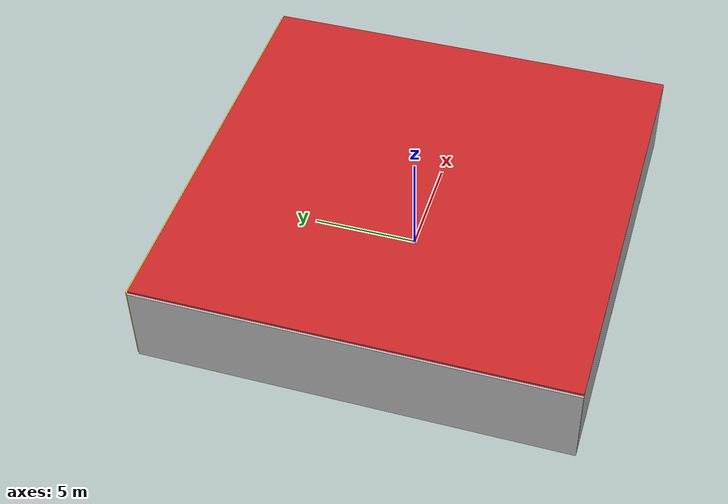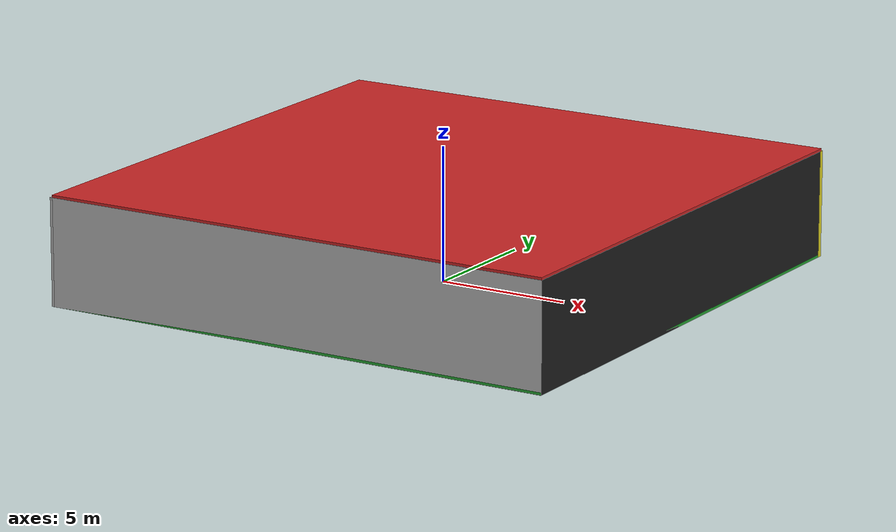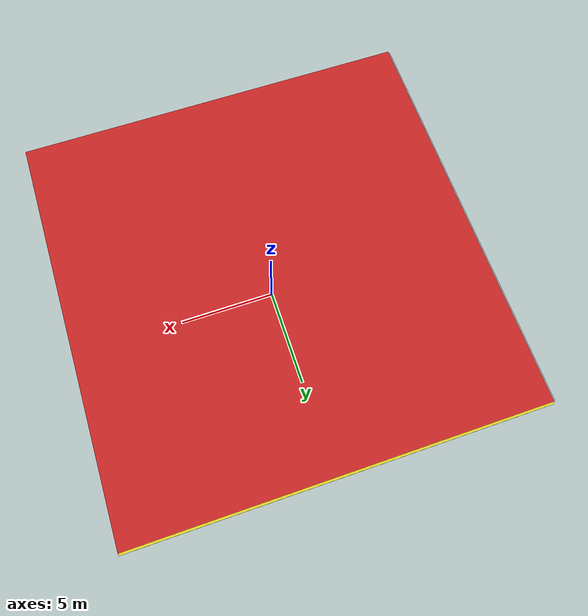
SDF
<sdf version="1.4">
 <world name="default">
  <physics type="ode">
   <max_step_size>0.001</max_step_size>
   <real_time_factor>1</real_time_factor>
   <real_time_update_rate>1000</real_time_update_rate>
   <gravity>0 0 -9.8</gravity>
  </physics>
  <scene><ambient>0.4 0.4 0.4 1</ambient><background>0.7 0.7 0.7 1</background><shadows>1</shadows></scene>
  <model name="Surrounding">
   <static>1</static>
   <link name="Ceiling">
    <collision name="Ceiling_Collision"><geometry><box><size>20 20 0.1</size></box></geometry></collision>
    <visual name="Ceiling_Visual">
     <geometry><box><size>20 20 0.1</size></box></geometry>
     <material>
      <script><uri>file://media/materials/scripts/gazebo.material</uri><name>Gazebo/RedBright</name></script>
     </material>
    </visual>
    <pose>0 0 4.05 0 0 0</pose>
   </link>
   <link name="Wall_South">
    <collision name="Wall_South_Collision">
     <geometry><box><size>20 0 4</size></box></geometry>
     <pose>0 0 2 0 -0 0</pose>
    </collision>
    <visual name="Wall_South_Visual">
     <pose>0 0 2 0 -0 0</pose>
     <geometry><box><size>20 0 4</size></box></geometry>
     <material>
      <script><uri>file://media/materials/scripts/gazebo.material</uri><name>Gazebo/Pioneer2Body</name></script>
     </material>
    </visual>
    <velocity_decay><linear>0</linear><angular>0</angular></velocity_decay>
    <pose>0 -10 0 0 -0 0</pose>
   </link>
   <link name="Wall_East">
    <collision name="Wall_21_Collision">
     <geometry><box><size>20 0 4</size></box></geometry>
     <pose>0 0 2 0 -0 0</pose>
    </collision>
    <visual name="Wall_21_Visual">
     <pose>0 0 2 0 -0 0</pose>
     <geometry><box><size>20 0 4</size></box></geometry>
     <material>
      <script><uri>file://media/materials/scripts/gazebo.material</uri><name>Gazebo/Black</name></script>
     </material>
    </visual>
    <velocity_decay><linear>0</linear><angular>0</angular></velocity_decay>
    <pose>10 0 0 0 -0 1.5708</pose>
   </link>
   <link name="Wall_North">
    <collision name="Wall_22_Collision">
     <geometry><box><size>20 0.2 4</size></box></geometry>
     <pose>0 0 2 0 -0 0</pose>
    </collision>
    <visual name="Wall_22_Visual">
     <pose>0 0 2 0 -0 0</pose>
     <geometry><box><size>20 0.2 4</size></box></geometry>
     <material>
      <script><uri>file://media/materials/scripts/gazebo.material</uri><name>Gazebo/YellowGlow</name></script>
     </material>
    </visual>
    <velocity_decay><linear>0</linear><angular>0</angular></velocity_decay>
    <pose>0 10 0 0 -0 0</pose>
   </link>
   <link name="Wall_West">
    <collision name="Wall_23_Collision">
     <geometry><box><size>20 0.2 4</size></box></geometry>
     <pose>0 0 2 0 -0 0</pose>
    </collision>
    <visual name="Wall_23_Visual">
     <pose>0 0 2 0 -0 0</pose>
     <geometry><box><size>20 0.2 4</size></box></geometry>
     <material>
      <script><uri>file://media/materials/scripts/gazebo.material</uri><name>Gazebo/CloudySky</name></script>
     </material>
    </visual>
    <velocity_decay><linear>0</linear><angular>0</angular></velocity_decay>
    <pose>-10 0 0 0 0 -1.5708</pose>
   </link>
   <link name="Ground_link">
    <collision name="collision">
     <pose>0 0 .05 0 -0 0</pose>
     <geometry><box><size>20 20 0.1</size></box></geometry>
    </collision>
    <visual name="visual">
     <pose>0 0 .05 0 -0 0</pose>
     <geometry><box><size>20 20 0.1</size></box></geometry>
     <material>
      <script><uri>file://media/materials/scripts/gazebo.material</uri><name>Gazebo/Green</name></script>
     </material>
    </visual>
   </link>
   <static>1</static>
  </model>
  <spherical_coordinates>
   <surface_model>EARTH_WGS84</surface_model>
   <latitude_deg>0</latitude_deg>
   <longitude_deg>0</longitude_deg>
   <elevation>0</elevation>
   <heading_deg>0</heading_deg>
  </spherical_coordinates>
  <light name="lightball_0" type="diffuse">
   <diffuse>0.8 0.8 0.8 1</diffuse>
   <specular>0.2 0.2 0.2 1</specular>
   <attenuation>
    <range>100</range>
    <constant>0.7</constant>
    <linear>0.01</linear>
    <quadratic>0.001</quadratic>
   </attenuation>
   <direction>-0.5 0.1 -0.9</direction>
   <pose>-3.93983934579 -3.41323972377 2.5772170105 0 0 0</pose>
  </light>
  <light name="lightball_1" type="diffuse">
   <diffuse>0.8 0.8 0.8 1</diffuse>
   <specular>0.2 0.2 0.2 1</specular>
   <attenuation>
    <range>100</range>
    <constant>0.7</constant>
    <linear>0.01</linear>
    <quadratic>0.001</quadratic>
   </attenuation>
   <direction>-0.5 0.1 -0.9</direction>
   <pose>8.64142809975 4.73759571861 3.54910614674 0 0 0</pose>
  </light>
  <light name="lightball_2" type="diffuse">
   <diffuse>0.8 0.8 0.8 1</diffuse>
   <specular>0.2 0.2 0.2 1</specular>
   <attenuation>
    <range>100</range>
    <constant>0.7</constant>
    <linear>0.01</linear>
    <quadratic>0.001</quadratic>
   </attenuation>
   <direction>-0.5 0.1 -0.9</direction>
   <pose>-2.94578282741 7.87503829908 0.627444665816 0 0 0</pose>
  </light>
  <light name="lightball_3" type="diffuse">
   <diffuse>0.8 0.8 0.8 1</diffuse>
   <specular>0.2 0.2 0.2 1</specular>
   <attenuation>
    <range>100</range>
    <constant>0.7</constant>
    <linear>0.01</linear>
    <quadratic>0.001</quadratic>
   </attenuation>
   <direction>-0.5 0.1 -0.9</direction>
   <pose>-4.67197115134 0.107706090287 2.80888177285 0 0 0</pose>
  </light>
  <light name="lightball_4" type="diffuse">
   <diffuse>0.8 0.8 0.8 1</diffuse>
   <specular>0.2 0.2 0.2 1</specular>
   <attenuation>
    <range>100</range>
    <constant>0.7</constant>
    <linear>0.01</linear>
    <quadratic>0.001</quadratic>
   </attenuation>
   <direction>-0.5 0.1 -0.9</direction>
   <pose>1.3487065367 1.59901266394 1.4371316988 0 0 0</pose>
  </light>
  <light name="lightball_5" type="diffuse">
   <diffuse>0.8 0.8 0.8 1</diffuse>
   <specular>0.2 0.2 0.2 1</specular>
   <attenuation>
    <range>100</range>
    <constant>0.7</constant>
    <linear>0.01</linear>
    <quadratic>0.001</quadratic>
   </attenuation>
   <direction>-0.5 0.1 -0.9</direction>
   <pose>4.25032814352 -2.24612033919 2.3491788901 0 0 0</pose>
  </light>
  <light name="lightball_6" type="diffuse">
   <diffuse>0.8 0.8 0.8 1</diffuse>
   <specular>0.2 0.2 0.2 1</specular>
   <attenuation>
    <range>100</range>
    <constant>0.7</constant>
    <linear>0.01</linear>
    <quadratic>0.001</quadratic>
   </attenuation>
   <direction>-0.5 0.1 -0.9</direction>
   <pose>7.87783151638 -3.62413787579 3.81011513521 0 0 0</pose>
  </light>
  <light name="lightball_7" type="diffuse">
   <diffuse>0.8 0.8 0.8 1</diffuse>
   <specular>0.2 0.2 0.2 1</specular>
   <attenuation>
    <range>100</range>
    <constant>0.7</constant>
    <linear>0.01</linear>
    <quadratic>0.001</quadratic>
   </attenuation>
   <direction>-0.5 0.1 -0.9</direction>
   <pose>-1.37183056809 -6.16373920605 2.06649844418 0 0 0</pose>
  </light>
  <light name="lightball_8" type="diffuse">
   <diffuse>0.8 0.8 0.8 1</diffuse>
   <specular>0.2 0.2 0.2 1</specular>
   <attenuation>
    <range>100</range>
    <constant>0.7</constant>
    <linear>0.01</linear>
    <quadratic>0.001</quadratic>
   </attenuation>
   <direction>-0.5 0.1 -0.9</direction>
   <pose>-6.15664880838 -3.09371213008 2.11414821277 0 0 0</pose>
  </light>
  <light name="lightball_9" type="diffuse">
   <diffuse>0.8 0.8 0.8 1</diffuse>
   <specular>0.2 0.2 0.2 1</specular>
   <attenuation>
    <range>100</range>
    <constant>0.7</constant>
    <linear>0.01</linear>
    <quadratic>0.001</quadratic>
   </attenuation>
   <direction>-0.5 0.1 -0.9</direction>
   <pose>-3.94799119139 8.59911416634 2.0584819587 0 0 0</pose>
  </light>
  <light name="lightball_10" type="diffuse">
   <diffuse>0.8 0.8 0.8 1</diffuse>
   <specular>0.2 0.2 0.2 1</specular>
   <attenuation>
    <range>100</range>
    <constant>0.7</constant>
    <linear>0.01</linear>
    <quadratic>0.001</quadratic>
   </attenuation>
   <direction>-0.5 0.1 -0.9</direction>
   <pose>-7.14328324799 -7.04743406074 1.02301684889 0 0 0</pose>
  </light>
  <light name="lightball_11" type="diffuse">
   <diffuse>0.8 0.8 0.8 1</diffuse>
   <specular>0.2 0.2 0.2 1</specular>
   <attenuation>
    <range>100</range>
    <constant>0.7</constant>
    <linear>0.01</linear>
    <quadratic>0.001</quadratic>
   </attenuation>
   <direction>-0.5 0.1 -0.9</direction>
   <pose>9.35576730133 -7.31860323178 2.90706381177 0 0 0</pose>
  </light>
  <include><uri>model://cabinet</uri><pose>2.03323920213 -7.04854069942 0 0 0 1.62160622848</pose></include>
  <include><uri>model://cabinet</uri><pose>1.53445521396 1.45260114498 0 0 0 0.495347604278</pose></include>
  <include><uri>model://cabinet</uri><pose>2.26123193113 8.11168188986 0 0 0 1.65908318856</pose></include>
  <include><uri>model://cabinet</uri><pose>5.15337714664 -1.91318527141 0 0 0 2.12766193082</pose></include>
  <include>
   <uri>model://construction_cone</uri>
   <pose>7.82533622943 -7.26416092532 0 0 0 1.15820252527</pose>
  </include>
  <include><uri>model://cabinet</uri><pose>7.61180976045 0.943415396854 0 0 0 0.344941040509</pose></include>
  <include><uri>model://cabinet</uri><pose>7.16779080393 4.39442737723 0 0 0 0.0566834258595</pose></include>
 </world>
</sdf>

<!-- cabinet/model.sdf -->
<sdf version="1.5">
  <model name="cabinet">
    <static>true</static>
    <link name="cabinet_bottom_plate">
      <inertial>
        <pose>0 0 -1 0 0 0</pose>
        <inertia>
          <ixx>2.050000</ixx>
          <ixy>0</ixy>
          <ixz>0</ixz>
          <iyy>2.050000</iyy>
          <iyz>0</iyz>
          <izz>2.050000</izz>
        </inertia>
        <mass>25.000000</mass>
      </inertial>
      <collision name="cabinet_bottom_plate_geom">
        <pose>0 0 0.010000 0 0 0</pose>
        <geometry>
          <box>
            <size>0.450000 0.450000 0.020000</size>
          </box>
        </geometry>
      </collision>
      <visual name="cabinet_bottom_plate_geom_visual">
        <pose>0 0 0.010000 0 0 0</pose>
        <geometry>
          <box>
            <size>0.450000 0.450000 0.020000</size>
          </box>
        </geometry>
        <material>
          <script>
            <uri>model://media/materials/scripts/gazebo.material</uri>
            <name>Gazebo/Wood</name>
          </script>
        </material>
      </visual>
      <collision name="cabinet_bottom_plate_geom_cabinet_back_plate">
        <pose>0.235000 0 0.510000 0 0 0</pose>
        <geometry>
          <box>
            <size>0.020000 0.450000 1.020000</size>
          </box>
        </geometry>
      </collision>
      <visual name="cabinet_bottom_plate_geom_cabinet_back_plate_visual">
        <pose>0.235000 0 0.510000 0 0 0</pose>
        <geometry>
          <box>
            <size>0.020000 0.450000 1.020000</size>
          </box>
        </geometry>
        <material>
          <script>
            <uri>model://media/materials/scripts/gazebo.material</uri>
            <name>Gazebo/Wood</name>
          </script>
        </material>
      </visual>
      <collision name="cabinet_bottom_plate_geom_cabinet_left_plate">
        <pose>0 0.235000 0.510000 0 0 0</pose>
        <geometry>
          <box>
            <size>0.450000 0.020000 1.020000</size>
          </box>
        </geometry>
      </collision>
      <visual name="cabinet_bottom_plate_geom_cabinet_left_plate_visual">
        <pose>0 0.235000 0.510000 0 0 0</pose>
        <geometry>
          <box>
            <size>0.450000 0.020000 1.020000</size>
          </box>
        </geometry>
        <material>
          <script>
            <uri>model://media/materials/scripts/gazebo.material</uri>
            <name>Gazebo/Wood</name>
          </script>
        </material>
      </visual>
      <collision name="cabinet_bottom_plate_geom_cabinet_middle_plate">
        <pose>0 0 0.510000 0 0 0</pose>
        <geometry>
          <box>
            <size>0.450000 0.450000 0.020000</size>
          </box>
        </geometry>
      </collision>
      <visual name="cabinet_bottom_plate_geom_cabinet_middle_plate_visual">
        <pose>0 0 0.510000 0 0 0</pose>
        <geometry>
          <box>
            <size>0.450000 0.450000 0.020000</size>
          </box>
        </geometry>
        <material>
          <script>
            <uri>model://media/materials/scripts/gazebo.material</uri>
            <name>Gazebo/Wood</name>
          </script>
        </material>
      </visual>
      <collision name="cabinet_bottom_plate_geom_cabinet_right_plate">
        <pose>0 -0.235000 0.510000 0 0 0</pose>
        <geometry>
          <box>
            <size>0.450000 0.020000 1.020000</size>
          </box>
        </geometry>
      </collision>
      <visual name="cabinet_bottom_plate_geom_cabinet_right_plate_visual">
        <pose>0 -0.235000 0.510000 0 0 0</pose>
        <geometry>
          <box>
            <size>0.450000 0.020000 1.020000</size>
          </box>
        </geometry>
        <material>
          <script>
            <uri>model://media/materials/scripts/gazebo.material</uri>
            <name>Gazebo/Wood</name>
          </script>
        </material>
      </visual>
      <collision name="cabinet_bottom_plate_geom_cabinet_top_plate">
        <pose>0 0 1.010000 0 0 0</pose>
        <geometry>
          <box>
            <size>0.450000 0.450000 0.020000</size>
          </box>
        </geometry>
      </collision>
      <visual name="cabinet_bottom_plate_geom_cabinet_top_plate_visual">
        <pose>0 0 1.010000 0 0 0</pose>
        <geometry>
          <box>
            <size>0.450000 0.450000 0.020000</size>
          </box>
        </geometry>
        <material>
          <script>
            <uri>model://media/materials/scripts/gazebo.material</uri>
            <name>Gazebo/Wood</name>
          </script>
        </material>
      </visual>
    </link>
  </model>
</sdf>

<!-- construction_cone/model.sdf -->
<sdf version="1.5">
  <model name="Construction Cone">
    <link name="link">
      <collision name="collision">
        <geometry>
          <mesh>
            <scale>10 10 10</scale>
            <uri>file://isr-testbed/construction_cone/meshes/construction_cone.dae</uri>
          </mesh>
        </geometry>
      </collision>
      <visual name="visual">
        <geometry>
          <mesh>
            <scale>10 10 10</scale>
            <uri>file://isr-testbed/construction_cone/meshes/construction_cone.dae</uri>
          </mesh>
        </geometry>
      </visual>
    </link>
  </model>
</sdf>
